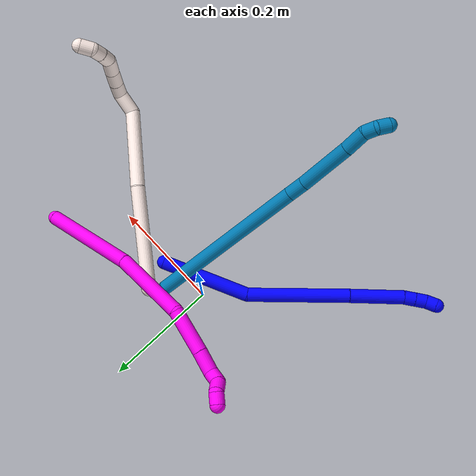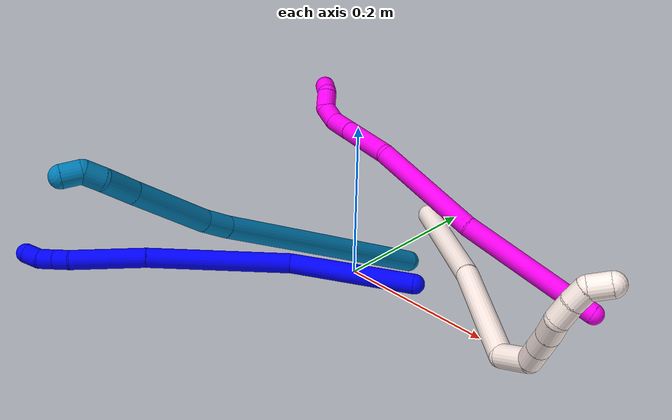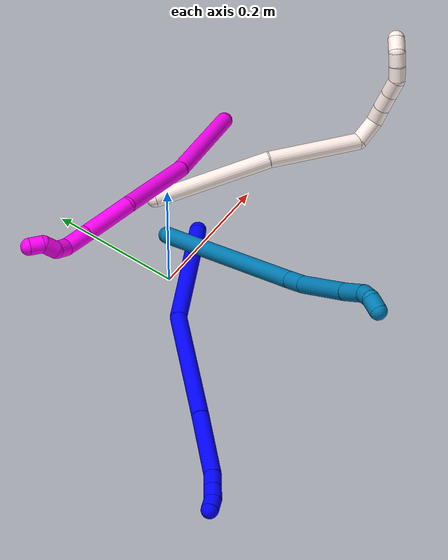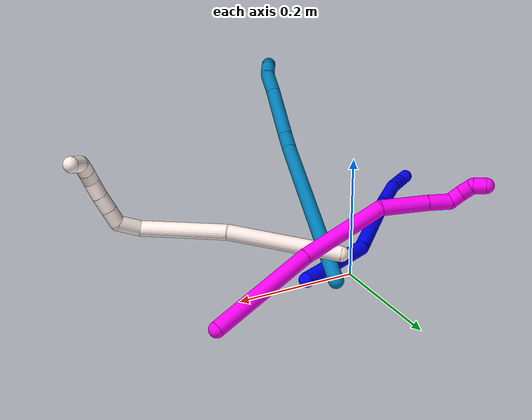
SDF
<sdf version="1.7">
 <world name="default">
  <model name="1">
   <static>0</static>
   <link name="1">
    <collision name="collision-cylinder-e_1_1_4">
     <pose>-0.028417 -0.034757 0.066493 0.481658 -0.362048 -0.089841</pose>
     <geometry><cylinder><radius>0.0125</radius><length>0.160461</length></cylinder></geometry>
     <surface>
      <friction><ode><mu>1.16</mu><mu2>1.16</mu2><slip1>0</slip1><slip2>0</slip2></ode></friction>
      <contact><ode><kp>1e+06</kp><kd>1</kd><max_vel>0</max_vel><min_depth>0.001</min_depth></ode></contact>
     </surface>
    </collision>
    <visual name="visual-cylinder-e_1_1_4">
     <pose>-0.028417 -0.034757 0.066493 0.481658 -0.362048 -0.089841</pose>
     <geometry><cylinder><radius>0.0125</radius><length>0.160461</length></cylinder></geometry>
     <material><ambient>0 0 1 1</ambient></material>
    </visual>
    <collision name="collision-cylinder-e_2_4_5">
     <pose>-0.116797 -0.104394 0.191779 0.535452 -0.720053 -0.205791</pose>
     <geometry><cylinder><radius>0.0125</radius><length>0.181865</length></cylinder></geometry>
     <surface>
      <friction><ode><mu>1.16</mu><mu2>1.16</mu2><slip1>0</slip1><slip2>0</slip2></ode></friction>
      <contact><ode><kp>1e+06</kp><kd>1</kd><max_vel>0</max_vel><min_depth>0.001</min_depth></ode></contact>
     </surface>
    </collision>
    <visual name="visual-cylinder-e_2_4_5">
     <pose>-0.116797 -0.104394 0.191779 0.535452 -0.720053 -0.205791</pose>
     <geometry><cylinder><radius>0.0125</radius><length>0.181865</length></cylinder></geometry>
     <material><ambient>0 0 1 1</ambient></material>
    </visual>
    <collision name="collision-cylinder-e_3_5_6">
     <pose>-0.208245 -0.154489 0.283988 0.427269 -0.708819 -0.16021</pose>
     <geometry><cylinder><radius>0.0125</radius><length>0.096736</length></cylinder></geometry>
     <surface>
      <friction><ode><mu>1.16</mu><mu2>1.16</mu2><slip1>0</slip1><slip2>0</slip2></ode></friction>
      <contact><ode><kp>1e+06</kp><kd>1</kd><max_vel>0</max_vel><min_depth>0.001</min_depth></ode></contact>
     </surface>
    </collision>
    <visual name="visual-cylinder-e_3_5_6">
     <pose>-0.208245 -0.154489 0.283988 0.427269 -0.708819 -0.16021</pose>
     <geometry><cylinder><radius>0.0125</radius><length>0.096736</length></cylinder></geometry>
     <material><ambient>0 0 1 1</ambient></material>
    </visual>
    <collision name="collision-cylinder-e_4_6_7">
     <pose>-0.245079 -0.173322 0.325352 0.427246 -0.54974 -0.122201</pose>
     <geometry><cylinder><radius>0.0125</radius><length>0.02048</length></cylinder></geometry>
     <surface>
      <friction><ode><mu>1.16</mu><mu2>1.16</mu2><slip1>0</slip1><slip2>0</slip2></ode></friction>
      <contact><ode><kp>1e+06</kp><kd>1</kd><max_vel>0</max_vel><min_depth>0.001</min_depth></ode></contact>
     </surface>
    </collision>
    <visual name="visual-cylinder-e_4_6_7">
     <pose>-0.245079 -0.173322 0.325352 0.427246 -0.54974 -0.122201</pose>
     <geometry><cylinder><radius>0.0125</radius><length>0.02048</length></cylinder></geometry>
     <material><ambient>0 0 1 1</ambient></material>
    </visual>
    <collision name="collision-cylinder-e_5_7_8">
     <pose>-0.255747 -0.180563 0.341204 0.429652 -0.548769 -0.122682</pose>
     <geometry><cylinder><radius>0.0125</radius><length>0.020387</length></cylinder></geometry>
     <surface>
      <friction><ode><mu>1.16</mu><mu2>1.16</mu2><slip1>0</slip1><slip2>0</slip2></ode></friction>
      <contact><ode><kp>1e+06</kp><kd>1</kd><max_vel>0</max_vel><min_depth>0.001</min_depth></ode></contact>
     </surface>
    </collision>
    <visual name="visual-cylinder-e_5_7_8">
     <pose>-0.255747 -0.180563 0.341204 0.429652 -0.548769 -0.122682</pose>
     <geometry><cylinder><radius>0.0125</radius><length>0.020387</length></cylinder></geometry>
     <material><ambient>0 0 1 1</ambient></material>
    </visual>
    <collision name="collision-cylinder-e_6_8_2">
     <pose>-0.264323 -0.190416 0.356271 0.716025 -0.330793 -0.12474</pose>
     <geometry><cylinder><radius>0.0125</radius><length>0.020071</length></cylinder></geometry>
     <surface>
      <friction><ode><mu>1.16</mu><mu2>1.16</mu2><slip1>0</slip1><slip2>0</slip2></ode></friction>
      <contact><ode><kp>1e+06</kp><kd>1</kd><max_vel>0</max_vel><min_depth>0.001</min_depth></ode></contact>
     </surface>
    </collision>
    <visual name="visual-cylinder-e_6_8_2">
     <pose>-0.264323 -0.190416 0.356271 0.716025 -0.330793 -0.12474</pose>
     <geometry><cylinder><radius>0.0125</radius><length>0.020071</length></cylinder></geometry>
     <material><ambient>0 0 1 1</ambient></material>
    </visual>
    <collision name="collision-sphere-2">
     <pose>-0.267583 -0.196646 0.363432 0 -0 0</pose>
     <geometry><sphere><radius>0.0125</radius></sphere></geometry>
     <surface>
      <friction><ode><mu>1.16</mu><mu2>1.16</mu2><slip1>0</slip1><slip2>0</slip2></ode></friction>
      <contact><ode><kp>1e+06</kp><kd>1</kd><max_vel>0</max_vel><min_depth>0.001</min_depth></ode></contact>
     </surface>
    </collision>
    <visual name="visual-sphere-2">
     <pose>-0.267583 -0.196646 0.363432 0 -0 0</pose>
     <geometry><sphere><radius>0.0125</radius></sphere></geometry>
     <material><ambient>0 0 1 1</ambient></material>
    </visual>
    <collision name="collision-sphere-4">
     <pose>-0.056834 -0.069515 0.132986 0 -0 0</pose>
     <geometry><sphere><radius>0.0125</radius></sphere></geometry>
     <surface>
      <friction><ode><mu>1.16</mu><mu2>1.16</mu2><slip1>0</slip1><slip2>0</slip2></ode></friction>
      <contact><ode><kp>1e+06</kp><kd>1</kd><max_vel>0</max_vel><min_depth>0.001</min_depth></ode></contact>
     </surface>
    </collision>
    <visual name="visual-sphere-4">
     <pose>-0.056834 -0.069515 0.132986 0 -0 0</pose>
     <geometry><sphere><radius>0.0125</radius></sphere></geometry>
     <material><ambient>0 0 1 1</ambient></material>
    </visual>
    <collision name="collision-sphere-1">
     <geometry><sphere><radius>0.0125</radius></sphere></geometry>
     <surface>
      <friction><ode><mu>1.16</mu><mu2>1.16</mu2><slip1>0</slip1><slip2>0</slip2></ode></friction>
      <contact><ode><kp>1e+06</kp><kd>1</kd><max_vel>0</max_vel><min_depth>0.001</min_depth></ode></contact>
     </surface>
    </collision>
    <visual name="visual-sphere-1">
     <geometry><sphere><radius>0.0125</radius></sphere></geometry>
     <material><ambient>0 0 1 1</ambient></material>
    </visual>
    <collision name="collision-sphere-8">
     <pose>-0.261064 -0.184186 0.349111 0 -0 0</pose>
     <geometry><sphere><radius>0.0125</radius></sphere></geometry>
     <surface>
      <friction><ode><mu>1.16</mu><mu2>1.16</mu2><slip1>0</slip1><slip2>0</slip2></ode></friction>
      <contact><ode><kp>1e+06</kp><kd>1</kd><max_vel>0</max_vel><min_depth>0.001</min_depth></ode></contact>
     </surface>
    </collision>
    <visual name="visual-sphere-8">
     <pose>-0.261064 -0.184186 0.349111 0 -0 0</pose>
     <geometry><sphere><radius>0.0125</radius></sphere></geometry>
     <material><ambient>0 0 1 1</ambient></material>
    </visual>
    <collision name="collision-sphere-5">
     <pose>-0.17676 -0.139274 0.250572 0 -0 0</pose>
     <geometry><sphere><radius>0.0125</radius></sphere></geometry>
     <surface>
      <friction><ode><mu>1.16</mu><mu2>1.16</mu2><slip1>0</slip1><slip2>0</slip2></ode></friction>
      <contact><ode><kp>1e+06</kp><kd>1</kd><max_vel>0</max_vel><min_depth>0.001</min_depth></ode></contact>
     </surface>
    </collision>
    <visual name="visual-sphere-5">
     <pose>-0.17676 -0.139274 0.250572 0 -0 0</pose>
     <geometry><sphere><radius>0.0125</radius></sphere></geometry>
     <material><ambient>0 0 1 1</ambient></material>
    </visual>
    <collision name="collision-sphere-6">
     <pose>-0.239729 -0.169704 0.317405 0 -0 0</pose>
     <geometry><sphere><radius>0.0125</radius></sphere></geometry>
     <surface>
      <friction><ode><mu>1.16</mu><mu2>1.16</mu2><slip1>0</slip1><slip2>0</slip2></ode></friction>
      <contact><ode><kp>1e+06</kp><kd>1</kd><max_vel>0</max_vel><min_depth>0.001</min_depth></ode></contact>
     </surface>
    </collision>
    <visual name="visual-sphere-6">
     <pose>-0.239729 -0.169704 0.317405 0 -0 0</pose>
     <geometry><sphere><radius>0.0125</radius></sphere></geometry>
     <material><ambient>0 0 1 1</ambient></material>
    </visual>
    <collision name="collision-sphere-7">
     <pose>-0.250429 -0.17694 0.333298 0 -0 0</pose>
     <geometry><sphere><radius>0.0125</radius></sphere></geometry>
     <surface>
      <friction><ode><mu>1.16</mu><mu2>1.16</mu2><slip1>0</slip1><slip2>0</slip2></ode></friction>
      <contact><ode><kp>1e+06</kp><kd>1</kd><max_vel>0</max_vel><min_depth>0.001</min_depth></ode></contact>
     </surface>
    </collision>
    <visual name="visual-sphere-7">
     <pose>-0.250429 -0.17694 0.333298 0 -0 0</pose>
     <geometry><sphere><radius>0.0125</radius></sphere></geometry>
     <material><ambient>0 0 1 1</ambient></material>
    </visual>
    <inertial>
     <pose>-0.122968 -0.10112 0.187579 0 -0 0</pose>
     <mass>0.5</mass>
     <inertia>
      <ixx>0.000625</ixx>
      <ixy>0</ixy>
      <ixz>0</ixz>
      <iyy>0.000723</iyy>
      <iyz>0</iyz>
      <izz>0.000915</izz>
     </inertia>
    </inertial>
   </link>
   <pose>0.088883 0.012163 0.017165 -2.11985 0.077501 1.6497</pose>
  </model>
  <model name="9">
   <static>0</static>
   <link name="9">
    <collision name="collision-cylinder-e_1_1_4">
     <pose>-0.032272 0.002999 0.140101 -0.021405 -0.22635 0.002433</pose>
     <geometry><cylinder><radius>0.0125</radius><length>0.287602</length></cylinder></geometry>
     <surface>
      <friction><ode><mu>1.16</mu><mu2>1.16</mu2><slip1>0</slip1><slip2>0</slip2></ode></friction>
      <contact><ode><kp>1e+06</kp><kd>1</kd><max_vel>0</max_vel><min_depth>0.001</min_depth></ode></contact>
     </surface>
    </collision>
    <visual name="visual-cylinder-e_1_1_4">
     <pose>-0.032272 0.002999 0.140101 -0.021405 -0.22635 0.002433</pose>
     <geometry><cylinder><radius>0.0125</radius><length>0.287602</length></cylinder></geometry>
     <material><ambient>0 0.490196 0.709804 1</ambient></material>
    </visual>
    <collision name="collision-cylinder-e_2_4_5">
     <pose>-0.06718 0.006446 0.295849 -0.02857 -0.166849 0.002389</pose>
     <geometry><cylinder><radius>0.0125</radius><length>0.031749</length></cylinder></geometry>
     <surface>
      <friction><ode><mu>1.16</mu><mu2>1.16</mu2><slip1>0</slip1><slip2>0</slip2></ode></friction>
      <contact><ode><kp>1e+06</kp><kd>1</kd><max_vel>0</max_vel><min_depth>0.001</min_depth></ode></contact>
     </surface>
    </collision>
    <visual name="visual-cylinder-e_2_4_5">
     <pose>-0.06718 0.006446 0.295849 -0.02857 -0.166849 0.002389</pose>
     <geometry><cylinder><radius>0.0125</radius><length>0.031749</length></cylinder></geometry>
     <material><ambient>0 0.490196 0.709804 1</ambient></material>
    </visual>
    <collision name="collision-cylinder-e_3_5_6">
     <pose>-0.073152 0.006111 0.359807 0.016179 -0.068926 -0.000558</pose>
     <geometry><cylinder><radius>0.0125</radius><length>0.096864</length></cylinder></geometry>
     <surface>
      <friction><ode><mu>1.16</mu><mu2>1.16</mu2><slip1>0</slip1><slip2>0</slip2></ode></friction>
      <contact><ode><kp>1e+06</kp><kd>1</kd><max_vel>0</max_vel><min_depth>0.001</min_depth></ode></contact>
     </surface>
    </collision>
    <visual name="visual-cylinder-e_3_5_6">
     <pose>-0.073152 0.006111 0.359807 0.016179 -0.068926 -0.000558</pose>
     <geometry><cylinder><radius>0.0125</radius><length>0.096864</length></cylinder></geometry>
     <material><ambient>0 0.490196 0.709804 1</ambient></material>
    </visual>
    <collision name="collision-cylinder-e_4_6_7">
     <pose>-0.077616 0.003848 0.428176 0.073753 -0.056026 -0.002067</pose>
     <geometry><cylinder><radius>0.0125</radius><length>0.04029</length></cylinder></geometry>
     <surface>
      <friction><ode><mu>1.16</mu><mu2>1.16</mu2><slip1>0</slip1><slip2>0</slip2></ode></friction>
      <contact><ode><kp>1e+06</kp><kd>1</kd><max_vel>0</max_vel><min_depth>0.001</min_depth></ode></contact>
     </surface>
    </collision>
    <visual name="visual-cylinder-e_4_6_7">
     <pose>-0.077616 0.003848 0.428176 0.073753 -0.056026 -0.002067</pose>
     <geometry><cylinder><radius>0.0125</radius><length>0.04029</length></cylinder></geometry>
     <material><ambient>0 0.490196 0.709804 1</ambient></material>
    </visual>
    <collision name="collision-cylinder-e_5_7_8">
     <pose>-0.079486 0.005461 0.458804 -0.284915 -0.067274 0.009653</pose>
     <geometry><cylinder><radius>0.0125</radius><length>0.022075</length></cylinder></geometry>
     <surface>
      <friction><ode><mu>1.16</mu><mu2>1.16</mu2><slip1>0</slip1><slip2>0</slip2></ode></friction>
      <contact><ode><kp>1e+06</kp><kd>1</kd><max_vel>0</max_vel><min_depth>0.001</min_depth></ode></contact>
     </surface>
    </collision>
    <visual name="visual-cylinder-e_5_7_8">
     <pose>-0.079486 0.005461 0.458804 -0.284915 -0.067274 0.009653</pose>
     <geometry><cylinder><radius>0.0125</radius><length>0.022075</length></cylinder></geometry>
     <material><ambient>0 0.490196 0.709804 1</ambient></material>
    </visual>
    <collision name="collision-cylinder-e_6_8_2">
     <pose>-0.086729 0.013163 0.47653 -0.571924 -0.652265 0.198229</pose>
     <geometry><cylinder><radius>0.0125</radius><length>0.02142</length></cylinder></geometry>
     <surface>
      <friction><ode><mu>1.16</mu><mu2>1.16</mu2><slip1>0</slip1><slip2>0</slip2></ode></friction>
      <contact><ode><kp>1e+06</kp><kd>1</kd><max_vel>0</max_vel><min_depth>0.001</min_depth></ode></contact>
     </surface>
    </collision>
    <visual name="visual-cylinder-e_6_8_2">
     <pose>-0.086729 0.013163 0.47653 -0.571924 -0.652265 0.198229</pose>
     <geometry><cylinder><radius>0.0125</radius><length>0.02142</length></cylinder></geometry>
     <material><ambient>0 0.490196 0.709804 1</ambient></material>
    </visual>
    <collision name="collision-sphere-2">
     <pose>-0.09323 0.01777 0.483687 0 -0 0</pose>
     <geometry><sphere><radius>0.0125</radius></sphere></geometry>
     <surface>
      <friction><ode><mu>1.16</mu><mu2>1.16</mu2><slip1>0</slip1><slip2>0</slip2></ode></friction>
      <contact><ode><kp>1e+06</kp><kd>1</kd><max_vel>0</max_vel><min_depth>0.001</min_depth></ode></contact>
     </surface>
    </collision>
    <visual name="visual-sphere-2">
     <pose>-0.09323 0.01777 0.483687 0 -0 0</pose>
     <geometry><sphere><radius>0.0125</radius></sphere></geometry>
     <material><ambient>0 0.490196 0.709804 1</ambient></material>
    </visual>
    <collision name="collision-sphere-4">
     <pose>-0.064544 0.005999 0.280201 0 -0 0</pose>
     <geometry><sphere><radius>0.0125</radius></sphere></geometry>
     <surface>
      <friction><ode><mu>1.16</mu><mu2>1.16</mu2><slip1>0</slip1><slip2>0</slip2></ode></friction>
      <contact><ode><kp>1e+06</kp><kd>1</kd><max_vel>0</max_vel><min_depth>0.001</min_depth></ode></contact>
     </surface>
    </collision>
    <visual name="visual-sphere-4">
     <pose>-0.064544 0.005999 0.280201 0 -0 0</pose>
     <geometry><sphere><radius>0.0125</radius></sphere></geometry>
     <material><ambient>0 0.490196 0.709804 1</ambient></material>
    </visual>
    <collision name="collision-sphere-1">
     <geometry><sphere><radius>0.0125</radius></sphere></geometry>
     <surface>
      <friction><ode><mu>1.16</mu><mu2>1.16</mu2><slip1>0</slip1><slip2>0</slip2></ode></friction>
      <contact><ode><kp>1e+06</kp><kd>1</kd><max_vel>0</max_vel><min_depth>0.001</min_depth></ode></contact>
     </surface>
    </collision>
    <visual name="visual-sphere-1">
     <geometry><sphere><radius>0.0125</radius></sphere></geometry>
     <material><ambient>0 0.490196 0.709804 1</ambient></material>
    </visual>
    <collision name="collision-sphere-8">
     <pose>-0.080228 0.008556 0.469373 0 -0 0</pose>
     <geometry><sphere><radius>0.0125</radius></sphere></geometry>
     <surface>
      <friction><ode><mu>1.16</mu><mu2>1.16</mu2><slip1>0</slip1><slip2>0</slip2></ode></friction>
      <contact><ode><kp>1e+06</kp><kd>1</kd><max_vel>0</max_vel><min_depth>0.001</min_depth></ode></contact>
     </surface>
    </collision>
    <visual name="visual-sphere-8">
     <pose>-0.080228 0.008556 0.469373 0 -0 0</pose>
     <geometry><sphere><radius>0.0125</radius></sphere></geometry>
     <material><ambient>0 0.490196 0.709804 1</ambient></material>
    </visual>
    <collision name="collision-sphere-5">
     <pose>-0.069817 0.006893 0.311497 0 -0 0</pose>
     <geometry><sphere><radius>0.0125</radius></sphere></geometry>
     <surface>
      <friction><ode><mu>1.16</mu><mu2>1.16</mu2><slip1>0</slip1><slip2>0</slip2></ode></friction>
      <contact><ode><kp>1e+06</kp><kd>1</kd><max_vel>0</max_vel><min_depth>0.001</min_depth></ode></contact>
     </surface>
    </collision>
    <visual name="visual-sphere-5">
     <pose>-0.069817 0.006893 0.311497 0 -0 0</pose>
     <geometry><sphere><radius>0.0125</radius></sphere></geometry>
     <material><ambient>0 0.490196 0.709804 1</ambient></material>
    </visual>
    <collision name="collision-sphere-6">
     <pose>-0.076488 0.00533 0.408118 0 -0 0</pose>
     <geometry><sphere><radius>0.0125</radius></sphere></geometry>
     <surface>
      <friction><ode><mu>1.16</mu><mu2>1.16</mu2><slip1>0</slip1><slip2>0</slip2></ode></friction>
      <contact><ode><kp>1e+06</kp><kd>1</kd><max_vel>0</max_vel><min_depth>0.001</min_depth></ode></contact>
     </surface>
    </collision>
    <visual name="visual-sphere-6">
     <pose>-0.076488 0.00533 0.408118 0 -0 0</pose>
     <geometry><sphere><radius>0.0125</radius></sphere></geometry>
     <material><ambient>0 0.490196 0.709804 1</ambient></material>
    </visual>
    <collision name="collision-sphere-7">
     <pose>-0.078744 0.002365 0.448235 0 -0 0</pose>
     <geometry><sphere><radius>0.0125</radius></sphere></geometry>
     <surface>
      <friction><ode><mu>1.16</mu><mu2>1.16</mu2><slip1>0</slip1><slip2>0</slip2></ode></friction>
      <contact><ode><kp>1e+06</kp><kd>1</kd><max_vel>0</max_vel><min_depth>0.001</min_depth></ode></contact>
     </surface>
    </collision>
    <visual name="visual-sphere-7">
     <pose>-0.078744 0.002365 0.448235 0 -0 0</pose>
     <geometry><sphere><radius>0.0125</radius></sphere></geometry>
     <material><ambient>0 0.490196 0.709804 1</ambient></material>
    </visual>
    <inertial>
     <pose>-0.05048 0.004433 0.24425 0 -0 0</pose>
     <mass>0.5</mass>
     <inertia>
      <ixx>0.002034</ixx>
      <ixy>0</ixy>
      <ixz>0</ixz>
      <iyy>0.002093</iyy>
      <iyz>0</iyz>
      <izz>0.000452</izz>
     </inertia>
    </inertial>
   </link>
   <pose>0.052387 0.042573 0.020758 -0.314702 -0.833891 1.74557</pose>
  </model>
  <model name="10">
   <static>0</static>
   <link name="10">
    <collision name="collision-cylinder-e_1_1_4">
     <pose>-0.065916 0.035267 0.046979 -0.643944 -0.842875 0.296886</pose>
     <geometry><cylinder><radius>0.0125</radius><length>0.176587</length></cylinder></geometry>
     <surface>
      <friction><ode><mu>1.16</mu><mu2>1.16</mu2><slip1>0</slip1><slip2>0</slip2></ode></friction>
      <contact><ode><kp>1e+06</kp><kd>1</kd><max_vel>0</max_vel><min_depth>0.001</min_depth></ode></contact>
     </surface>
    </collision>
    <visual name="visual-cylinder-e_1_1_4">
     <pose>-0.065916 0.035267 0.046979 -0.643944 -0.842875 0.296886</pose>
     <geometry><cylinder><radius>0.0125</radius><length>0.176587</length></cylinder></geometry>
     <material><ambient>1 0 0.964706 1</ambient></material>
    </visual>
    <collision name="collision-cylinder-e_2_4_5">
     <pose>-0.189138 0.087608 0.132196 -0.419952 -0.939716 0.215597</pose>
     <geometry><cylinder><radius>0.0125</radius><length>0.141953</length></cylinder></geometry>
     <surface>
      <friction><ode><mu>1.16</mu><mu2>1.16</mu2><slip1>0</slip1><slip2>0</slip2></ode></friction>
      <contact><ode><kp>1e+06</kp><kd>1</kd><max_vel>0</max_vel><min_depth>0.001</min_depth></ode></contact>
     </surface>
    </collision>
    <visual name="visual-cylinder-e_2_4_5">
     <pose>-0.189138 0.087608 0.132196 -0.419952 -0.939716 0.215597</pose>
     <geometry><cylinder><radius>0.0125</radius><length>0.141953</length></cylinder></geometry>
     <material><ambient>1 0 0.964706 1</ambient></material>
    </visual>
    <collision name="collision-cylinder-e_3_5_6">
     <pose>-0.270693 0.101754 0.200196 0.098055 -0.681345 -0.034784</pose>
     <geometry><cylinder><radius>0.0125</radius><length>0.077003</length></cylinder></geometry>
     <surface>
      <friction><ode><mu>1.16</mu><mu2>1.16</mu2><slip1>0</slip1><slip2>0</slip2></ode></friction>
      <contact><ode><kp>1e+06</kp><kd>1</kd><max_vel>0</max_vel><min_depth>0.001</min_depth></ode></contact>
     </surface>
    </collision>
    <visual name="visual-cylinder-e_3_5_6">
     <pose>-0.270693 0.101754 0.200196 0.098055 -0.681345 -0.034784</pose>
     <geometry><cylinder><radius>0.0125</radius><length>0.077003</length></cylinder></geometry>
     <material><ambient>1 0 0.964706 1</ambient></material>
    </visual>
    <collision name="collision-cylinder-e_4_6_7">
     <pose>-0.306618 0.096483 0.244972 0.154818 -0.655118 -0.0527</pose>
     <geometry><cylinder><radius>0.0125</radius><length>0.038328</length></cylinder></geometry>
     <surface>
      <friction><ode><mu>1.16</mu><mu2>1.16</mu2><slip1>0</slip1><slip2>0</slip2></ode></friction>
      <contact><ode><kp>1e+06</kp><kd>1</kd><max_vel>0</max_vel><min_depth>0.001</min_depth></ode></contact>
     </surface>
    </collision>
    <visual name="visual-cylinder-e_4_6_7">
     <pose>-0.306618 0.096483 0.244972 0.154818 -0.655118 -0.0527</pose>
     <geometry><cylinder><radius>0.0125</radius><length>0.038328</length></cylinder></geometry>
     <material><ambient>1 0 0.964706 1</ambient></material>
    </visual>
    <collision name="collision-cylinder-e_5_7_8">
     <pose>-0.328752 0.095792 0.264299 -0.365923 -1.15504 0.239986</pose>
     <geometry><cylinder><radius>0.0125</radius><length>0.022863</length></cylinder></geometry>
     <surface>
      <friction><ode><mu>1.16</mu><mu2>1.16</mu2><slip1>0</slip1><slip2>0</slip2></ode></friction>
      <contact><ode><kp>1e+06</kp><kd>1</kd><max_vel>0</max_vel><min_depth>0.001</min_depth></ode></contact>
     </surface>
    </collision>
    <visual name="visual-cylinder-e_5_7_8">
     <pose>-0.328752 0.095792 0.264299 -0.365923 -1.15504 0.239986</pose>
     <geometry><cylinder><radius>0.0125</radius><length>0.022863</length></cylinder></geometry>
     <material><ambient>1 0 0.964706 1</ambient></material>
    </visual>
    <collision name="collision-cylinder-e_6_8_9">
     <pose>-0.350054 0.093674 0.268239 1.66885 -1.23473 -1.32882</pose>
     <geometry><cylinder><radius>0.0125</radius><length>0.022974</length></cylinder></geometry>
     <surface>
      <friction><ode><mu>1.16</mu><mu2>1.16</mu2><slip1>0</slip1><slip2>0</slip2></ode></friction>
      <contact><ode><kp>1e+06</kp><kd>1</kd><max_vel>0</max_vel><min_depth>0.001</min_depth></ode></contact>
     </surface>
    </collision>
    <visual name="visual-cylinder-e_6_8_9">
     <pose>-0.350054 0.093674 0.268239 1.66885 -1.23473 -1.32882</pose>
     <geometry><cylinder><radius>0.0125</radius><length>0.022974</length></cylinder></geometry>
     <material><ambient>1 0 0.964706 1</ambient></material>
    </visual>
    <collision name="collision-cylinder-e_7_9_2">
     <pose>-0.367895 0.085224 0.273533 0.690388 -0.760945 -0.285686</pose>
     <geometry><cylinder><radius>0.0125</radius><length>0.020293</length></cylinder></geometry>
     <surface>
      <friction><ode><mu>1.16</mu><mu2>1.16</mu2><slip1>0</slip1><slip2>0</slip2></ode></friction>
      <contact><ode><kp>1e+06</kp><kd>1</kd><max_vel>0</max_vel><min_depth>0.001</min_depth></ode></contact>
     </surface>
    </collision>
    <visual name="visual-cylinder-e_7_9_2">
     <pose>-0.367895 0.085224 0.273533 0.690388 -0.760945 -0.285686</pose>
     <geometry><cylinder><radius>0.0125</radius><length>0.020293</length></cylinder></geometry>
     <material><ambient>1 0 0.964706 1</ambient></material>
    </visual>
    <collision name="collision-sphere-2">
     <pose>-0.374892 0.080545 0.279199 0 -0 0</pose>
     <geometry><sphere><radius>0.0125</radius></sphere></geometry>
     <surface>
      <friction><ode><mu>1.16</mu><mu2>1.16</mu2><slip1>0</slip1><slip2>0</slip2></ode></friction>
      <contact><ode><kp>1e+06</kp><kd>1</kd><max_vel>0</max_vel><min_depth>0.001</min_depth></ode></contact>
     </surface>
    </collision>
    <visual name="visual-sphere-2">
     <pose>-0.374892 0.080545 0.279199 0 -0 0</pose>
     <geometry><sphere><radius>0.0125</radius></sphere></geometry>
     <material><ambient>1 0 0.964706 1</ambient></material>
    </visual>
    <collision name="collision-sphere-9">
     <pose>-0.360898 0.089904 0.267868 0 -0 0</pose>
     <geometry><sphere><radius>0.0125</radius></sphere></geometry>
     <surface>
      <friction><ode><mu>1.16</mu><mu2>1.16</mu2><slip1>0</slip1><slip2>0</slip2></ode></friction>
      <contact><ode><kp>1e+06</kp><kd>1</kd><max_vel>0</max_vel><min_depth>0.001</min_depth></ode></contact>
     </surface>
    </collision>
    <visual name="visual-sphere-9">
     <pose>-0.360898 0.089904 0.267868 0 -0 0</pose>
     <geometry><sphere><radius>0.0125</radius></sphere></geometry>
     <material><ambient>1 0 0.964706 1</ambient></material>
    </visual>
    <collision name="collision-sphere-4">
     <pose>-0.131832 0.070534 0.093958 0 -0 0</pose>
     <geometry><sphere><radius>0.0125</radius></sphere></geometry>
     <surface>
      <friction><ode><mu>1.16</mu><mu2>1.16</mu2><slip1>0</slip1><slip2>0</slip2></ode></friction>
      <contact><ode><kp>1e+06</kp><kd>1</kd><max_vel>0</max_vel><min_depth>0.001</min_depth></ode></contact>
     </surface>
    </collision>
    <visual name="visual-sphere-4">
     <pose>-0.131832 0.070534 0.093958 0 -0 0</pose>
     <geometry><sphere><radius>0.0125</radius></sphere></geometry>
     <material><ambient>1 0 0.964706 1</ambient></material>
    </visual>
    <collision name="collision-sphere-1">
     <geometry><sphere><radius>0.0125</radius></sphere></geometry>
     <surface>
      <friction><ode><mu>1.16</mu><mu2>1.16</mu2><slip1>0</slip1><slip2>0</slip2></ode></friction>
      <contact><ode><kp>1e+06</kp><kd>1</kd><max_vel>0</max_vel><min_depth>0.001</min_depth></ode></contact>
     </surface>
    </collision>
    <visual name="visual-sphere-1">
     <geometry><sphere><radius>0.0125</radius></sphere></geometry>
     <material><ambient>1 0 0.964706 1</ambient></material>
    </visual>
    <collision name="collision-sphere-8">
     <pose>-0.339209 0.097444 0.26861 0 -0 0</pose>
     <geometry><sphere><radius>0.0125</radius></sphere></geometry>
     <surface>
      <friction><ode><mu>1.16</mu><mu2>1.16</mu2><slip1>0</slip1><slip2>0</slip2></ode></friction>
      <contact><ode><kp>1e+06</kp><kd>1</kd><max_vel>0</max_vel><min_depth>0.001</min_depth></ode></contact>
     </surface>
    </collision>
    <visual name="visual-sphere-8">
     <pose>-0.339209 0.097444 0.26861 0 -0 0</pose>
     <geometry><sphere><radius>0.0125</radius></sphere></geometry>
     <material><ambient>1 0 0.964706 1</ambient></material>
    </visual>
    <collision name="collision-sphere-5">
     <pose>-0.246443 0.104682 0.170435 0 -0 0</pose>
     <geometry><sphere><radius>0.0125</radius></sphere></geometry>
     <surface>
      <friction><ode><mu>1.16</mu><mu2>1.16</mu2><slip1>0</slip1><slip2>0</slip2></ode></friction>
      <contact><ode><kp>1e+06</kp><kd>1</kd><max_vel>0</max_vel><min_depth>0.001</min_depth></ode></contact>
     </surface>
    </collision>
    <visual name="visual-sphere-5">
     <pose>-0.246443 0.104682 0.170435 0 -0 0</pose>
     <geometry><sphere><radius>0.0125</radius></sphere></geometry>
     <material><ambient>1 0 0.964706 1</ambient></material>
    </visual>
    <collision name="collision-sphere-6">
     <pose>-0.294943 0.098826 0.229957 0 -0 0</pose>
     <geometry><sphere><radius>0.0125</radius></sphere></geometry>
     <surface>
      <friction><ode><mu>1.16</mu><mu2>1.16</mu2><slip1>0</slip1><slip2>0</slip2></ode></friction>
      <contact><ode><kp>1e+06</kp><kd>1</kd><max_vel>0</max_vel><min_depth>0.001</min_depth></ode></contact>
     </surface>
    </collision>
    <visual name="visual-sphere-6">
     <pose>-0.294943 0.098826 0.229957 0 -0 0</pose>
     <geometry><sphere><radius>0.0125</radius></sphere></geometry>
     <material><ambient>1 0 0.964706 1</ambient></material>
    </visual>
    <collision name="collision-sphere-7">
     <pose>-0.318294 0.09414 0.259987 0 -0 0</pose>
     <geometry><sphere><radius>0.0125</radius></sphere></geometry>
     <surface>
      <friction><ode><mu>1.16</mu><mu2>1.16</mu2><slip1>0</slip1><slip2>0</slip2></ode></friction>
      <contact><ode><kp>1e+06</kp><kd>1</kd><max_vel>0</max_vel><min_depth>0.001</min_depth></ode></contact>
     </surface>
    </collision>
    <visual name="visual-sphere-7">
     <pose>-0.318294 0.09414 0.259987 0 -0 0</pose>
     <geometry><sphere><radius>0.0125</radius></sphere></geometry>
     <material><ambient>1 0 0.964706 1</ambient></material>
    </visual>
    <inertial>
     <pose>-0.188218 0.072537 0.139245 0 -0 0</pose>
     <mass>0.5</mass>
     <inertia>
      <ixx>0.000566</ixx>
      <ixy>0</ixy>
      <ixz>0</ixz>
      <iyy>0.00083</iyy>
      <iyz>0</iyz>
      <izz>0.000361</izz>
     </inertia>
    </inertial>
   </link>
   <pose>0.282232 0.101147 0.026726 2.72039 0.861318 -0.460471</pose>
  </model>
  <model name="11">
   <static>0</static>
   <link name="11">
    <collision name="collision-cylinder-e_1_1_4">
     <pose>0.027508 -0.026178 0.080363 0.314906 0.314647 0.050361</pose>
     <geometry><cylinder><radius>0.0125</radius><length>0.177766</length></cylinder></geometry>
     <surface>
      <friction><ode><mu>1.16</mu><mu2>1.16</mu2><slip1>0</slip1><slip2>0</slip2></ode></friction>
      <contact><ode><kp>1e+06</kp><kd>1</kd><max_vel>0</max_vel><min_depth>0.001</min_depth></ode></contact>
     </surface>
    </collision>
    <visual name="visual-cylinder-e_1_1_4">
     <pose>0.027508 -0.026178 0.080363 0.314906 0.314647 0.050361</pose>
     <geometry><cylinder><radius>0.0125</radius><length>0.177766</length></cylinder></geometry>
     <material><ambient>1 0.933333 0.909804 1</ambient></material>
    </visual>
    <collision name="collision-cylinder-e_2_4_5">
     <pose>0.071877 -0.083753 0.221294 0.47824 0.24231 0.059345</pose>
     <geometry><cylinder><radius>0.0125</radius><length>0.14055</length></cylinder></geometry>
     <surface>
      <friction><ode><mu>1.16</mu><mu2>1.16</mu2><slip1>0</slip1><slip2>0</slip2></ode></friction>
      <contact><ode><kp>1e+06</kp><kd>1</kd><max_vel>0</max_vel><min_depth>0.001</min_depth></ode></contact>
     </surface>
    </collision>
    <visual name="visual-cylinder-e_2_4_5">
     <pose>0.071877 -0.083753 0.221294 0.47824 0.24231 0.059345</pose>
     <geometry><cylinder><radius>0.0125</radius><length>0.14055</length></cylinder></geometry>
     <material><ambient>1 0.933333 0.909804 1</ambient></material>
    </visual>
    <collision name="collision-cylinder-e_3_5_6">
     <pose>0.103098 -0.116215 0.294374 0.08498 0.852222 0.038593</pose>
     <geometry><cylinder><radius>0.0125</radius><length>0.038149</length></cylinder></geometry>
     <surface>
      <friction><ode><mu>1.16</mu><mu2>1.16</mu2><slip1>0</slip1><slip2>0</slip2></ode></friction>
      <contact><ode><kp>1e+06</kp><kd>1</kd><max_vel>0</max_vel><min_depth>0.001</min_depth></ode></contact>
     </surface>
    </collision>
    <visual name="visual-cylinder-e_3_5_6">
     <pose>0.103098 -0.116215 0.294374 0.08498 0.852222 0.038593</pose>
     <geometry><cylinder><radius>0.0125</radius><length>0.038149</length></cylinder></geometry>
     <material><ambient>1 0.933333 0.909804 1</ambient></material>
    </visual>
    <collision name="collision-cylinder-e_4_6_7">
     <pose>0.123704 -0.109688 0.315022 -0.750842 0.511531 -0.20539</pose>
     <geometry><cylinder><radius>0.0125</radius><length>0.025528</length></cylinder></geometry>
     <surface>
      <friction><ode><mu>1.16</mu><mu2>1.16</mu2><slip1>0</slip1><slip2>0</slip2></ode></friction>
      <contact><ode><kp>1e+06</kp><kd>1</kd><max_vel>0</max_vel><min_depth>0.001</min_depth></ode></contact>
     </surface>
    </collision>
    <visual name="visual-cylinder-e_4_6_7">
     <pose>0.123704 -0.109688 0.315022 -0.750842 0.511531 -0.20539</pose>
     <geometry><cylinder><radius>0.0125</radius><length>0.025528</length></cylinder></geometry>
     <material><ambient>1 0.933333 0.909804 1</ambient></material>
    </visual>
    <collision name="collision-cylinder-e_5_7_8">
     <pose>0.136159 -0.094509 0.331801 -0.720374 0.495032 -0.189769</pose>
     <geometry><cylinder><radius>0.0125</radius><length>0.026134</length></cylinder></geometry>
     <surface>
      <friction><ode><mu>1.16</mu><mu2>1.16</mu2><slip1>0</slip1><slip2>0</slip2></ode></friction>
      <contact><ode><kp>1e+06</kp><kd>1</kd><max_vel>0</max_vel><min_depth>0.001</min_depth></ode></contact>
     </surface>
    </collision>
    <visual name="visual-cylinder-e_5_7_8">
     <pose>0.136159 -0.094509 0.331801 -0.720374 0.495032 -0.189769</pose>
     <geometry><cylinder><radius>0.0125</radius><length>0.026134</length></cylinder></geometry>
     <material><ambient>1 0.933333 0.909804 1</ambient></material>
    </visual>
    <collision name="collision-cylinder-e_6_8_9">
     <pose>0.148159 -0.078533 0.349185 -0.764943 0.445914 -0.181912</pose>
     <geometry><cylinder><radius>0.0125</radius><length>0.026861</length></cylinder></geometry>
     <surface>
      <friction><ode><mu>1.16</mu><mu2>1.16</mu2><slip1>0</slip1><slip2>0</slip2></ode></friction>
      <contact><ode><kp>1e+06</kp><kd>1</kd><max_vel>0</max_vel><min_depth>0.001</min_depth></ode></contact>
     </surface>
    </collision>
    <visual name="visual-cylinder-e_6_8_9">
     <pose>0.148159 -0.078533 0.349185 -0.764943 0.445914 -0.181912</pose>
     <geometry><cylinder><radius>0.0125</radius><length>0.026861</length></cylinder></geometry>
     <material><ambient>1 0.933333 0.909804 1</ambient></material>
    </visual>
    <collision name="collision-cylinder-e_7_9_10">
     <pose>0.161756 -0.062894 0.360814 -1.19168 0.785576 -0.547735</pose>
     <geometry><cylinder><radius>0.0125</radius><length>0.02207</length></cylinder></geometry>
     <surface>
      <friction><ode><mu>1.16</mu><mu2>1.16</mu2><slip1>0</slip1><slip2>0</slip2></ode></friction>
      <contact><ode><kp>1e+06</kp><kd>1</kd><max_vel>0</max_vel><min_depth>0.001</min_depth></ode></contact>
     </surface>
    </collision>
    <visual name="visual-cylinder-e_7_9_10">
     <pose>0.161756 -0.062894 0.360814 -1.19168 0.785576 -0.547735</pose>
     <geometry><cylinder><radius>0.0125</radius><length>0.02207</length></cylinder></geometry>
     <material><ambient>1 0.933333 0.909804 1</ambient></material>
    </visual>
    <collision name="collision-cylinder-e_8_10_11">
     <pose>0.177453 -0.049658 0.365757 -1.2401 0.894691 -0.660064</pose>
     <geometry><cylinder><radius>0.0125</radius><length>0.020237</length></cylinder></geometry>
     <surface>
      <friction><ode><mu>1.16</mu><mu2>1.16</mu2><slip1>0</slip1><slip2>0</slip2></ode></friction>
      <contact><ode><kp>1e+06</kp><kd>1</kd><max_vel>0</max_vel><min_depth>0.001</min_depth></ode></contact>
     </surface>
    </collision>
    <visual name="visual-cylinder-e_8_10_11">
     <pose>0.177453 -0.049658 0.365757 -1.2401 0.894691 -0.660064</pose>
     <geometry><cylinder><radius>0.0125</radius><length>0.020237</length></cylinder></geometry>
     <material><ambient>1 0.933333 0.909804 1</ambient></material>
    </visual>
    <collision name="collision-cylinder-e_9_11_2">
     <pose>0.196697 -0.043819 0.367926 0.922396 1.55429 0.909306</pose>
     <geometry><cylinder><radius>0.0125</radius><length>0.022706</length></cylinder></geometry>
     <surface>
      <friction><ode><mu>1.16</mu><mu2>1.16</mu2><slip1>0</slip1><slip2>0</slip2></ode></friction>
      <contact><ode><kp>1e+06</kp><kd>1</kd><max_vel>0</max_vel><min_depth>0.001</min_depth></ode></contact>
     </surface>
    </collision>
    <visual name="visual-cylinder-e_9_11_2">
     <pose>0.196697 -0.043819 0.367926 0.922396 1.55429 0.909306</pose>
     <geometry><cylinder><radius>0.0125</radius><length>0.022706</length></cylinder></geometry>
     <material><ambient>1 0.933333 0.909804 1</ambient></material>
    </visual>
    <collision name="collision-sphere-2">
     <pose>0.208048 -0.043968 0.368039 0 -0 0</pose>
     <geometry><sphere><radius>0.0125</radius></sphere></geometry>
     <surface>
      <friction><ode><mu>1.16</mu><mu2>1.16</mu2><slip1>0</slip1><slip2>0</slip2></ode></friction>
      <contact><ode><kp>1e+06</kp><kd>1</kd><max_vel>0</max_vel><min_depth>0.001</min_depth></ode></contact>
     </surface>
    </collision>
    <visual name="visual-sphere-2">
     <pose>0.208048 -0.043968 0.368039 0 -0 0</pose>
     <geometry><sphere><radius>0.0125</radius></sphere></geometry>
     <material><ambient>1 0.933333 0.909804 1</ambient></material>
    </visual>
    <collision name="collision-sphere-11">
     <pose>0.185346 -0.043669 0.367813 0 -0 0</pose>
     <geometry><sphere><radius>0.0125</radius></sphere></geometry>
     <surface>
      <friction><ode><mu>1.16</mu><mu2>1.16</mu2><slip1>0</slip1><slip2>0</slip2></ode></friction>
      <contact><ode><kp>1e+06</kp><kd>1</kd><max_vel>0</max_vel><min_depth>0.001</min_depth></ode></contact>
     </surface>
    </collision>
    <visual name="visual-sphere-11">
     <pose>0.185346 -0.043669 0.367813 0 -0 0</pose>
     <geometry><sphere><radius>0.0125</radius></sphere></geometry>
     <material><ambient>1 0.933333 0.909804 1</ambient></material>
    </visual>
    <collision name="collision-sphere-10">
     <pose>0.16956 -0.055647 0.363701 0 -0 0</pose>
     <geometry><sphere><radius>0.0125</radius></sphere></geometry>
     <surface>
      <friction><ode><mu>1.16</mu><mu2>1.16</mu2><slip1>0</slip1><slip2>0</slip2></ode></friction>
      <contact><ode><kp>1e+06</kp><kd>1</kd><max_vel>0</max_vel><min_depth>0.001</min_depth></ode></contact>
     </surface>
    </collision>
    <visual name="visual-sphere-10">
     <pose>0.16956 -0.055647 0.363701 0 -0 0</pose>
     <geometry><sphere><radius>0.0125</radius></sphere></geometry>
     <material><ambient>1 0.933333 0.909804 1</ambient></material>
    </visual>
    <collision name="collision-sphere-9">
     <pose>0.153952 -0.070142 0.357926 0 -0 0</pose>
     <geometry><sphere><radius>0.0125</radius></sphere></geometry>
     <surface>
      <friction><ode><mu>1.16</mu><mu2>1.16</mu2><slip1>0</slip1><slip2>0</slip2></ode></friction>
      <contact><ode><kp>1e+06</kp><kd>1</kd><max_vel>0</max_vel><min_depth>0.001</min_depth></ode></contact>
     </surface>
    </collision>
    <visual name="visual-sphere-9">
     <pose>0.153952 -0.070142 0.357926 0 -0 0</pose>
     <geometry><sphere><radius>0.0125</radius></sphere></geometry>
     <material><ambient>1 0.933333 0.909804 1</ambient></material>
    </visual>
    <collision name="collision-sphere-4">
     <pose>0.055015 -0.052356 0.160726 0 -0 0</pose>
     <geometry><sphere><radius>0.0125</radius></sphere></geometry>
     <surface>
      <friction><ode><mu>1.16</mu><mu2>1.16</mu2><slip1>0</slip1><slip2>0</slip2></ode></friction>
      <contact><ode><kp>1e+06</kp><kd>1</kd><max_vel>0</max_vel><min_depth>0.001</min_depth></ode></contact>
     </surface>
    </collision>
    <visual name="visual-sphere-4">
     <pose>0.055015 -0.052356 0.160726 0 -0 0</pose>
     <geometry><sphere><radius>0.0125</radius></sphere></geometry>
     <material><ambient>1 0.933333 0.909804 1</ambient></material>
    </visual>
    <collision name="collision-sphere-1">
     <geometry><sphere><radius>0.0125</radius></sphere></geometry>
     <surface>
      <friction><ode><mu>1.16</mu><mu2>1.16</mu2><slip1>0</slip1><slip2>0</slip2></ode></friction>
      <contact><ode><kp>1e+06</kp><kd>1</kd><max_vel>0</max_vel><min_depth>0.001</min_depth></ode></contact>
     </surface>
    </collision>
    <visual name="visual-sphere-1">
     <geometry><sphere><radius>0.0125</radius></sphere></geometry>
     <material><ambient>1 0.933333 0.909804 1</ambient></material>
    </visual>
    <collision name="collision-sphere-8">
     <pose>0.142367 -0.086924 0.340443 0 -0 0</pose>
     <geometry><sphere><radius>0.0125</radius></sphere></geometry>
     <surface>
      <friction><ode><mu>1.16</mu><mu2>1.16</mu2><slip1>0</slip1><slip2>0</slip2></ode></friction>
      <contact><ode><kp>1e+06</kp><kd>1</kd><max_vel>0</max_vel><min_depth>0.001</min_depth></ode></contact>
     </surface>
    </collision>
    <visual name="visual-sphere-8">
     <pose>0.142367 -0.086924 0.340443 0 -0 0</pose>
     <geometry><sphere><radius>0.0125</radius></sphere></geometry>
     <material><ambient>1 0.933333 0.909804 1</ambient></material>
    </visual>
    <collision name="collision-sphere-5">
     <pose>0.088739 -0.11515 0.281862 0 -0 0</pose>
     <geometry><sphere><radius>0.0125</radius></sphere></geometry>
     <surface>
      <friction><ode><mu>1.16</mu><mu2>1.16</mu2><slip1>0</slip1><slip2>0</slip2></ode></friction>
      <contact><ode><kp>1e+06</kp><kd>1</kd><max_vel>0</max_vel><min_depth>0.001</min_depth></ode></contact>
     </surface>
    </collision>
    <visual name="visual-sphere-5">
     <pose>0.088739 -0.11515 0.281862 0 -0 0</pose>
     <geometry><sphere><radius>0.0125</radius></sphere></geometry>
     <material><ambient>1 0.933333 0.909804 1</ambient></material>
    </visual>
    <collision name="collision-sphere-6">
     <pose>0.117456 -0.117281 0.306885 0 -0 0</pose>
     <geometry><sphere><radius>0.0125</radius></sphere></geometry>
     <surface>
      <friction><ode><mu>1.16</mu><mu2>1.16</mu2><slip1>0</slip1><slip2>0</slip2></ode></friction>
      <contact><ode><kp>1e+06</kp><kd>1</kd><max_vel>0</max_vel><min_depth>0.001</min_depth></ode></contact>
     </surface>
    </collision>
    <visual name="visual-sphere-6">
     <pose>0.117456 -0.117281 0.306885 0 -0 0</pose>
     <geometry><sphere><radius>0.0125</radius></sphere></geometry>
     <material><ambient>1 0.933333 0.909804 1</ambient></material>
    </visual>
    <collision name="collision-sphere-7">
     <pose>0.129952 -0.102094 0.32316 0 -0 0</pose>
     <geometry><sphere><radius>0.0125</radius></sphere></geometry>
     <surface>
      <friction><ode><mu>1.16</mu><mu2>1.16</mu2><slip1>0</slip1><slip2>0</slip2></ode></friction>
      <contact><ode><kp>1e+06</kp><kd>1</kd><max_vel>0</max_vel><min_depth>0.001</min_depth></ode></contact>
     </surface>
    </collision>
    <visual name="visual-sphere-7">
     <pose>0.129952 -0.102094 0.32316 0 -0 0</pose>
     <geometry><sphere><radius>0.0125</radius></sphere></geometry>
     <material><ambient>1 0.933333 0.909804 1</ambient></material>
    </visual>
    <inertial>
     <pose>0.082497 -0.063252 0.212861 0 -0 0</pose>
     <mass>0.5</mass>
     <inertia>
      <ixx>0.000743</ixx>
      <ixy>0</ixy>
      <ixz>0</ixz>
      <iyy>0.000712</iyy>
      <iyz>0</iyz>
      <izz>5.2e-05</izz>
     </inertia>
    </inertial>
   </link>
   <pose>0.059245 0.06755 0.080281 1.20523 -0.291258 0.647724</pose>
  </model>
 </world>
</sdf>
